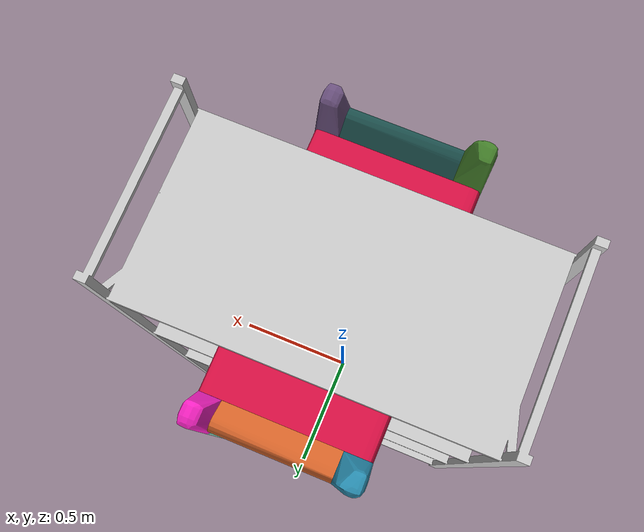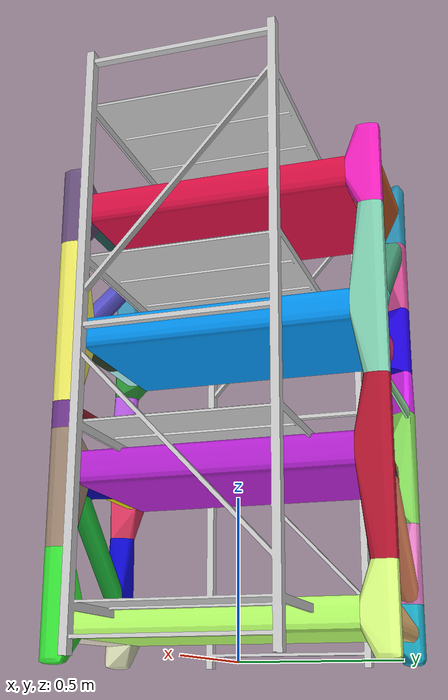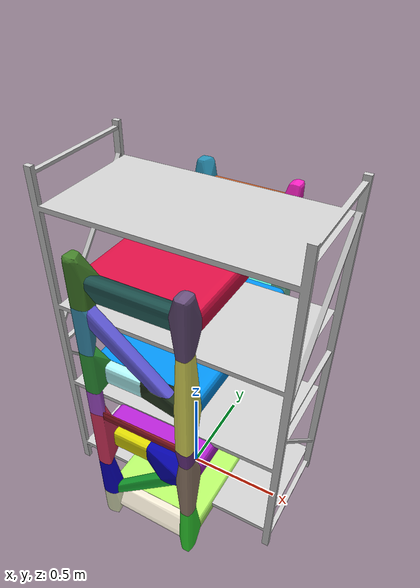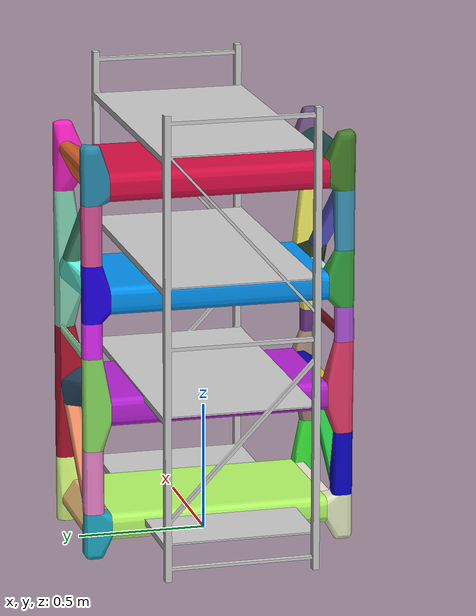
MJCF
<mujoco model="shelf">
  <default>
    <default class="visual">
      <geom group="1" type="mesh" contype="0" conaffinity="0"/>
    </default>
    <default class="collision">
      <geom group="0" type="mesh"/>
    </default>
  </default>
  <asset>
    <material name="CustomMaterial_002" specular="0.5" shininess="0.5" rgba="0.800000012 0.800000012 0.800000012 1.0"/>
    <mesh name="shelf" file="shelf.obj"/>
    <mesh name="shelf_collision_0" file="shelf_collision_0.obj"/>
    <mesh name="shelf_collision_1" file="shelf_collision_1.obj"/>
    <mesh name="shelf_collision_2" file="shelf_collision_2.obj"/>
    <mesh name="shelf_collision_3" file="shelf_collision_3.obj"/>
    <mesh name="shelf_collision_4" file="shelf_collision_4.obj"/>
    <mesh name="shelf_collision_5" file="shelf_collision_5.obj"/>
    <mesh name="shelf_collision_6" file="shelf_collision_6.obj"/>
    <mesh name="shelf_collision_7" file="shelf_collision_7.obj"/>
    <mesh name="shelf_collision_8" file="shelf_collision_8.obj"/>
    <mesh name="shelf_collision_9" file="shelf_collision_9.obj"/>
    <mesh name="shelf_collision_10" file="shelf_collision_10.obj"/>
    <mesh name="shelf_collision_11" file="shelf_collision_11.obj"/>
    <mesh name="shelf_collision_12" file="shelf_collision_12.obj"/>
    <mesh name="shelf_collision_13" file="shelf_collision_13.obj"/>
    <mesh name="shelf_collision_14" file="shelf_collision_14.obj"/>
    <mesh name="shelf_collision_15" file="shelf_collision_15.obj"/>
    <mesh name="shelf_collision_16" file="shelf_collision_16.obj"/>
    <mesh name="shelf_collision_17" file="shelf_collision_17.obj"/>
    <mesh name="shelf_collision_18" file="shelf_collision_18.obj"/>
    <mesh name="shelf_collision_19" file="shelf_collision_19.obj"/>
    <mesh name="shelf_collision_20" file="shelf_collision_20.obj"/>
    <mesh name="shelf_collision_21" file="shelf_collision_21.obj"/>
    <mesh name="shelf_collision_22" file="shelf_collision_22.obj"/>
    <mesh name="shelf_collision_23" file="shelf_collision_23.obj"/>
    <mesh name="shelf_collision_24" file="shelf_collision_24.obj"/>
    <mesh name="shelf_collision_25" file="shelf_collision_25.obj"/>
    <mesh name="shelf_collision_26" file="shelf_collision_26.obj"/>
    <mesh name="shelf_collision_27" file="shelf_collision_27.obj"/>
    <mesh name="shelf_collision_28" file="shelf_collision_28.obj"/>
    <mesh name="shelf_collision_29" file="shelf_collision_29.obj"/>
    <mesh name="shelf_collision_30" file="shelf_collision_30.obj"/>
    <mesh name="shelf_collision_31" file="shelf_collision_31.obj"/>
    <mesh name="shelf_collision_32" file="shelf_collision_32.obj"/>
    <mesh name="shelf_collision_33" file="shelf_collision_33.obj"/>
    <mesh name="shelf_collision_34" file="shelf_collision_34.obj"/>
    <mesh name="shelf_collision_35" file="shelf_collision_35.obj"/>
    <mesh name="shelf_collision_36" file="shelf_collision_36.obj"/>
    <mesh name="shelf_collision_37" file="shelf_collision_37.obj"/>
    <mesh name="shelf_collision_38" file="shelf_collision_38.obj"/>
    <mesh name="shelf_collision_39" file="shelf_collision_39.obj"/>
    <mesh name="shelf_collision_40" file="shelf_collision_40.obj"/>
    <mesh name="shelf_collision_41" file="shelf_collision_41.obj"/>
    <mesh name="shelf_collision_42" file="shelf_collision_42.obj"/>
    <mesh name="shelf_collision_43" file="shelf_collision_43.obj"/>
    <mesh name="shelf_collision_44" file="shelf_collision_44.obj"/>
  </asset>
  <worldbody>
    <body>
      <body name="object">
        <geom material="CustomMaterial_002" mesh="shelf" class="visual"/>
        <geom mesh="shelf_collision_0" rgba="0.7107502535863087 0.9945670823829849 0.40556750204624736 1" class="collision"/>
        <geom mesh="shelf_collision_1" rgba="0.8580717023177172 0.057838326040773436 0.2667826336322138 1" class="collision"/>
        <geom mesh="shelf_collision_2" rgba="0.7118424956486226 0.1282964105645722 0.8246323261581534 1" class="collision"/>
        <geom mesh="shelf_collision_3" rgba="0.2802086810100163 0.6009453687036425 0.46468693749879875 1" class="collision"/>
        <geom mesh="shelf_collision_4" rgba="0.008979843922220176 0.5728313231337151 0.9404750396976684 1" class="collision"/>
        <geom mesh="shelf_collision_5" rgba="0.11088102989037207 0.7185380261947926 0.22480721124133218 1" class="collision"/>
        <geom mesh="shelf_collision_6" rgba="0.36888684389107373 0.9713853765205221 0.8565184032888896 1" class="collision"/>
        <geom mesh="shelf_collision_7" rgba="0.37160612693392525 0.34651541981533984 0.8433029388593489 1" class="collision"/>
        <geom mesh="shelf_collision_8" rgba="0.10579108644446755 0.3028172484364593 0.2908264421084604 1" class="collision"/>
        <geom mesh="shelf_collision_9" rgba="0.9576447876535957 0.12464965167896735 0.7526140339695684 1" class="collision"/>
        <geom mesh="shelf_collision_10" rgba="0.41340533735542806 0.3128085627095881 0.4880658669754838 1" class="collision"/>
        <geom mesh="shelf_collision_11" rgba="0.8510710030449155 0.9956422879649075 0.5028488916453709 1" class="collision"/>
        <geom mesh="shelf_collision_12" rgba="0.537338444713441 0.8693554022245765 0.36931108858607375 1" class="collision"/>
        <geom mesh="shelf_collision_13" rgba="0.9504656792182019 0.9179036928724796 0.8367734981232929 1" class="collision"/>
        <geom mesh="shelf_collision_14" rgba="0.9128266644477644 0.73183398835046 0.4598337020903447 1" class="collision"/>
        <geom mesh="shelf_collision_15" rgba="0.2163458062894571 0.9069271071628532 0.2173306968694768 1" class="collision"/>
        <geom mesh="shelf_collision_16" rgba="0.8276535731242467 0.3857177650930419 0.15848055242702708 1" class="collision"/>
        <geom mesh="shelf_collision_17" rgba="0.49996963066364775 0.8124643202274525 0.6928075164443657 1" class="collision"/>
        <geom mesh="shelf_collision_18" rgba="0.6998079697225388 0.0800677252023525 0.18014761902105936 1" class="collision"/>
        <geom mesh="shelf_collision_19" rgba="0.8966388429291143 0.22438957650182856 0.39571496854550103 1" class="collision"/>
        <geom mesh="shelf_collision_20" rgba="0.9391614344167427 0.9298175023549252 0.38386276179952095 1" class="collision"/>
        <geom mesh="shelf_collision_21" rgba="0.5497376736497813 0.09740291885253283 0.14296371628759275 1" class="collision"/>
        <geom mesh="shelf_collision_22" rgba="0.8990704474415042 0.5298567598720884 0.3646640152599774 1" class="collision"/>
        <geom mesh="shelf_collision_23" rgba="0.15688215713405929 0.5512843628489084 0.687791280469446 1" class="collision"/>
        <geom mesh="shelf_collision_24" rgba="0.8783823844044526 0.1933459355836824 0.5895609995049583 1" class="collision"/>
        <geom mesh="shelf_collision_25" rgba="0.039059935487155806 0.014654857074040573 0.7823084580651318 1" class="collision"/>
        <geom mesh="shelf_collision_26" rgba="0.8782644730446552 0.16230362488209638 0.9717280531191782 1" class="collision"/>
        <geom mesh="shelf_collision_27" rgba="0.238241178515324 0.5958615818378975 0.7352519187935478 1" class="collision"/>
        <geom mesh="shelf_collision_28" rgba="0.02107565698580205 0.01335256427775322 0.6612031249243009 1" class="collision"/>
        <geom mesh="shelf_collision_29" rgba="0.8969346239202161 0.9169044923962972 0.7524154329190343 1" class="collision"/>
        <geom mesh="shelf_collision_30" rgba="0.7020762639732525 0.9891279084702154 0.9975254693642639 1" class="collision"/>
        <geom mesh="shelf_collision_31" rgba="0.6533940242860752 0.9445569886035989 0.7026094443453278 1" class="collision"/>
        <geom mesh="shelf_collision_32" rgba="0.6885627754976777 0.33066394951772526 0.8583039808149031 1" class="collision"/>
        <geom mesh="shelf_collision_33" rgba="0.4361461656949096 0.21457513443922038 0.550974241267619 1" class="collision"/>
        <geom mesh="shelf_collision_34" rgba="0.19928380962207415 0.630939009896916 0.23804657084785852 1" class="collision"/>
        <geom mesh="shelf_collision_35" rgba="0.8658070967740047 0.8429348013957114 0.01798915732844919 1" class="collision"/>
        <geom mesh="shelf_collision_36" rgba="0.8649431594542499 0.3206571542022767 0.6078548675695004 1" class="collision"/>
        <geom mesh="shelf_collision_37" rgba="0.6214242907793307 0.5251457347025387 0.4478454899010993 1" class="collision"/>
        <geom mesh="shelf_collision_38" rgba="0.10480220814943375 0.6682947844311177 0.7679582337698568 1" class="collision"/>
        <geom mesh="shelf_collision_39" rgba="0.9303680943543076 0.5157234189627662 0.7961174353533041 1" class="collision"/>
        <geom mesh="shelf_collision_40" rgba="0.26797581934066894 0.502829622457759 0.1655749757619308 1" class="collision"/>
        <geom mesh="shelf_collision_41" rgba="0.8609392875287559 0.5585628600048377 0.26945730536139 1" class="collision"/>
        <geom mesh="shelf_collision_42" rgba="0.15476481555386812 0.26595895360965915 0.35910193866904383 1" class="collision"/>
        <geom mesh="shelf_collision_43" rgba="0.12778461872265967 0.003017412740572545 0.8992925725145544 1" class="collision"/>
        <geom mesh="shelf_collision_44" rgba="0.14245577090871842 0.20698614507387314 0.12019171355790559 1" class="collision"/>
      </body>
    </body>
  </worldbody>
</mujoco>
